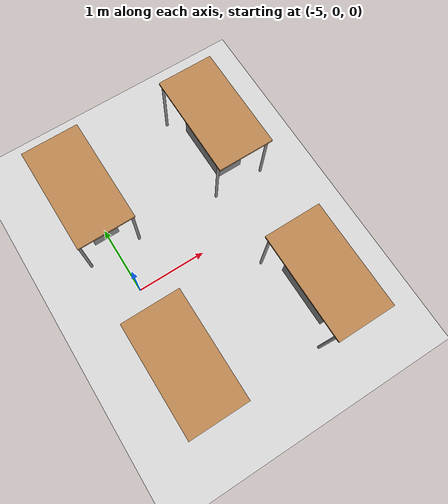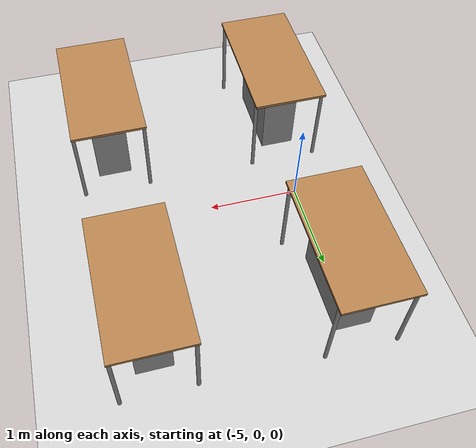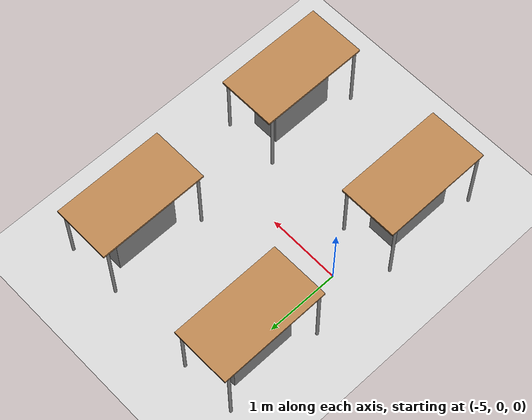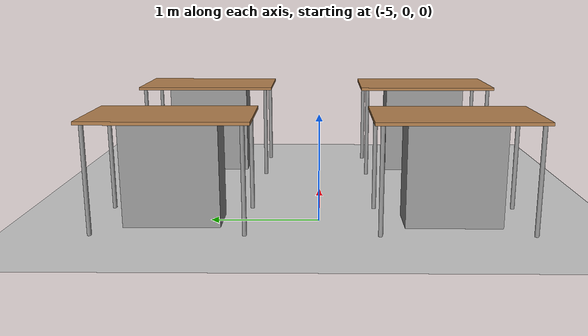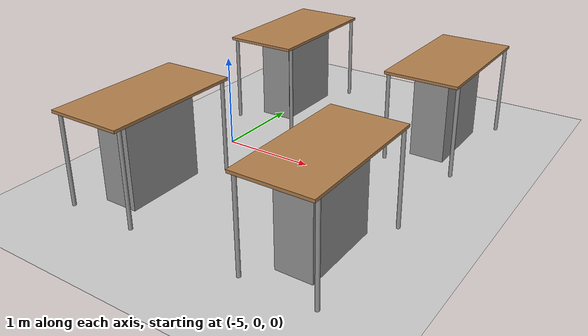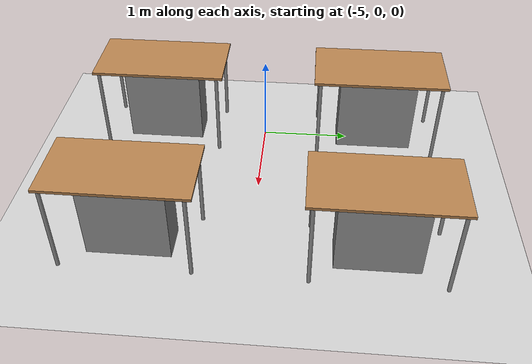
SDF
<sdf version="1.6">
 <world name="default">
  <model name="ground_plane">
   <static>1</static>
   <link name="link">
    <collision name="collision">
     <geometry><plane><normal>0 0 1</normal><size>100 100</size></plane></geometry>
     <surface><friction><ode><mu>100</mu><mu2>50</mu2></ode></friction></surface>
    </collision>
    <visual name="visual">
     <cast_shadows>0</cast_shadows>
     <geometry><plane><normal>0 0 1</normal><size>100 100</size></plane></geometry>
     <material>
      <script><uri>file://media/materials/scripts/gazebo.material</uri><name>Gazebo/Grey</name></script>
     </material>
    </visual>
   </link>
  </model>
  <model name="table-solid">
   <link name="link">
    <visual name="visual1">
     <pose>0 0 1 0 -0 0</pose>
     <geometry><box><size>1.5 0.8 0.03</size></box></geometry>
     <material>
      <script><uri>file://media/materials/scripts/gazebo.material</uri><name>Gazebo/Wood</name></script>
      <shader type="pixel"/>
      <ambient>1 1 1 1</ambient>
      <diffuse>1 1 1 1</diffuse>
      <specular>0.2 0.2 0.2 1</specular>
      <emissive>0 0 0 1</emissive>
     </material>
    </visual>
    <visual name="front_left_leg">
     <pose>0.68 0.38 0.5 0 -0 0</pose>
     <geometry><cylinder><radius>0.02</radius><length>1</length></cylinder></geometry>
     <material>
      <script><uri>file://media/materials/scripts/gazebo.material</uri><name>Gazebo/Grey</name></script>
      <shader type="pixel"/>
      <ambient>0.3 0.3 0.3 1</ambient>
      <diffuse>0.7 0.7 0.7 1</diffuse>
      <specular>0.01 0.01 0.01 1</specular>
      <emissive>0 0 0 1</emissive>
     </material>
    </visual>
    <visual name="front_right_leg">
     <pose>0.68 -0.38 0.5 0 -0 0</pose>
     <geometry><cylinder><radius>0.02</radius><length>1</length></cylinder></geometry>
     <material>
      <script><uri>file://media/materials/scripts/gazebo.material</uri><name>Gazebo/Grey</name></script>
      <shader type="pixel"/>
      <ambient>0.3 0.3 0.3 1</ambient>
      <diffuse>0.7 0.7 0.7 1</diffuse>
      <specular>0.01 0.01 0.01 1</specular>
      <emissive>0 0 0 1</emissive>
     </material>
    </visual>
    <visual name="back_right_leg">
     <pose>-0.68 -0.38 0.5 0 -0 0</pose>
     <geometry><cylinder><radius>0.02</radius><length>1</length></cylinder></geometry>
     <material>
      <script><uri>file://media/materials/scripts/gazebo.material</uri><name>Gazebo/Grey</name></script>
      <shader type="pixel"/>
      <ambient>0.3 0.3 0.3 1</ambient>
      <diffuse>0.7 0.7 0.7 1</diffuse>
      <specular>0.01 0.01 0.01 1</specular>
      <emissive>0 0 0 1</emissive>
     </material>
    </visual>
    <visual name="back_left_leg">
     <pose>-0.68 0.38 0.5 0 -0 0</pose>
     <geometry><cylinder><radius>0.02</radius><length>1</length></cylinder></geometry>
     <material>
      <script><uri>file://media/materials/scripts/gazebo.material</uri><name>Gazebo/Grey</name></script>
      <shader type="pixel"/>
      <ambient>0.3 0.3 0.3 1</ambient>
      <diffuse>0.7 0.7 0.7 1</diffuse>
      <specular>0.01 0.01 0.01 1</specular>
      <emissive>0 0 0 1</emissive>
     </material>
    </visual>
    <collision name="surface">
     <pose>0 0 1 0 -0 0</pose>
     <geometry><box><size>1.5 0.8 0.03</size></box></geometry>
     <surface>
      <friction>
       <ode><mu>0.6</mu><mu2>0.6</mu2><fdir1>0 0 0</fdir1><slip1>0</slip1><slip2>0</slip2></ode>
       <torsional>
        <coefficient>1</coefficient>
        <patch_radius>0</patch_radius>
        <surface_radius>0</surface_radius>
        <use_patch_radius>1</use_patch_radius>
        <ode><slip>0</slip></ode>
       </torsional>
      </friction>
      <bounce><restitution_coefficient>0</restitution_coefficient><threshold>1e+06</threshold></bounce>
      <contact>
       <collide_without_contact>0</collide_without_contact>
       <collide_without_contact_bitmask>1</collide_without_contact_bitmask>
       <collide_bitmask>1</collide_bitmask>
       <ode>
        <soft_cfm>0</soft_cfm>
        <soft_erp>0.2</soft_erp>
        <kp>1e+13</kp>
        <kd>1</kd>
        <max_vel>0.01</max_vel>
        <min_depth>0</min_depth>
       </ode>
       <bullet>
        <split_impulse>1</split_impulse>
        <split_impulse_penetration_threshold>-0.01</split_impulse_penetration_threshold>
        <soft_cfm>0</soft_cfm>
        <soft_erp>0.2</soft_erp>
        <kp>1e+13</kp>
        <kd>1</kd>
       </bullet>
      </contact>
     </surface>
    </collision>
    <collision name="front_left_leg">
     <pose>0.68 0.38 0.5 0 -0 0</pose>
     <geometry><cylinder><radius>0.02</radius><length>1</length></cylinder></geometry>
     <surface>
      <friction>
       <ode><mu>1</mu><mu2>1</mu2><fdir1>0 0 0</fdir1><slip1>0</slip1><slip2>0</slip2></ode>
       <torsional>
        <coefficient>1</coefficient>
        <patch_radius>0</patch_radius>
        <surface_radius>0</surface_radius>
        <use_patch_radius>1</use_patch_radius>
        <ode><slip>0</slip></ode>
       </torsional>
      </friction>
      <bounce><restitution_coefficient>0</restitution_coefficient><threshold>1e+06</threshold></bounce>
      <contact>
       <collide_without_contact>0</collide_without_contact>
       <collide_without_contact_bitmask>1</collide_without_contact_bitmask>
       <collide_bitmask>1</collide_bitmask>
       <ode>
        <soft_cfm>0</soft_cfm>
        <soft_erp>0.2</soft_erp>
        <kp>1e+13</kp>
        <kd>1</kd>
        <max_vel>0.01</max_vel>
        <min_depth>0</min_depth>
       </ode>
       <bullet>
        <split_impulse>1</split_impulse>
        <split_impulse_penetration_threshold>-0.01</split_impulse_penetration_threshold>
        <soft_cfm>0</soft_cfm>
        <soft_erp>0.2</soft_erp>
        <kp>1e+13</kp>
        <kd>1</kd>
       </bullet>
      </contact>
     </surface>
    </collision>
    <collision name="front_right_leg">
     <pose>0.68 -0.38 0.5 0 -0 0</pose>
     <geometry><cylinder><radius>0.02</radius><length>1</length></cylinder></geometry>
     <surface>
      <friction>
       <ode><mu>1</mu><mu2>1</mu2><fdir1>0 0 0</fdir1><slip1>0</slip1><slip2>0</slip2></ode>
       <torsional>
        <coefficient>1</coefficient>
        <patch_radius>0</patch_radius>
        <surface_radius>0</surface_radius>
        <use_patch_radius>1</use_patch_radius>
        <ode><slip>0</slip></ode>
       </torsional>
      </friction>
      <bounce><restitution_coefficient>0</restitution_coefficient><threshold>1e+06</threshold></bounce>
      <contact>
       <collide_without_contact>0</collide_without_contact>
       <collide_without_contact_bitmask>1</collide_without_contact_bitmask>
       <collide_bitmask>1</collide_bitmask>
       <ode>
        <soft_cfm>0</soft_cfm>
        <soft_erp>0.2</soft_erp>
        <kp>1e+13</kp>
        <kd>1</kd>
        <max_vel>0.01</max_vel>
        <min_depth>0</min_depth>
       </ode>
       <bullet>
        <split_impulse>1</split_impulse>
        <split_impulse_penetration_threshold>-0.01</split_impulse_penetration_threshold>
        <soft_cfm>0</soft_cfm>
        <soft_erp>0.2</soft_erp>
        <kp>1e+13</kp>
        <kd>1</kd>
       </bullet>
      </contact>
     </surface>
    </collision>
    <collision name="back_right_leg">
     <pose>-0.68 -0.38 0.5 0 -0 0</pose>
     <geometry><cylinder><radius>0.02</radius><length>1</length></cylinder></geometry>
     <surface>
      <friction>
       <ode><mu>1</mu><mu2>1</mu2><fdir1>0 0 0</fdir1><slip1>0</slip1><slip2>0</slip2></ode>
       <torsional>
        <coefficient>1</coefficient>
        <patch_radius>0</patch_radius>
        <surface_radius>0</surface_radius>
        <use_patch_radius>1</use_patch_radius>
        <ode><slip>0</slip></ode>
       </torsional>
      </friction>
      <bounce><restitution_coefficient>0</restitution_coefficient><threshold>1e+06</threshold></bounce>
      <contact>
       <collide_without_contact>0</collide_without_contact>
       <collide_without_contact_bitmask>1</collide_without_contact_bitmask>
       <collide_bitmask>1</collide_bitmask>
       <ode>
        <soft_cfm>0</soft_cfm>
        <soft_erp>0.2</soft_erp>
        <kp>1e+13</kp>
        <kd>1</kd>
        <max_vel>0.01</max_vel>
        <min_depth>0</min_depth>
       </ode>
       <bullet>
        <split_impulse>1</split_impulse>
        <split_impulse_penetration_threshold>-0.01</split_impulse_penetration_threshold>
        <soft_cfm>0</soft_cfm>
        <soft_erp>0.2</soft_erp>
        <kp>1e+13</kp>
        <kd>1</kd>
       </bullet>
      </contact>
     </surface>
    </collision>
    <collision name="back_left_leg">
     <pose>-0.68 0.38 0.5 0 -0 0</pose>
     <geometry><cylinder><radius>0.02</radius><length>1</length></cylinder></geometry>
     <surface>
      <friction>
       <ode><mu>1</mu><mu2>1</mu2><fdir1>0 0 0</fdir1><slip1>0</slip1><slip2>0</slip2></ode>
       <torsional>
        <coefficient>1</coefficient>
        <patch_radius>0</patch_radius>
        <surface_radius>0</surface_radius>
        <use_patch_radius>1</use_patch_radius>
        <ode><slip>0</slip></ode>
       </torsional>
      </friction>
      <bounce><restitution_coefficient>0</restitution_coefficient><threshold>1e+06</threshold></bounce>
      <contact>
       <collide_without_contact>0</collide_without_contact>
       <collide_without_contact_bitmask>1</collide_without_contact_bitmask>
       <collide_bitmask>1</collide_bitmask>
       <ode>
        <soft_cfm>0</soft_cfm>
        <soft_erp>0.2</soft_erp>
        <kp>1e+13</kp>
        <kd>1</kd>
        <max_vel>0.01</max_vel>
        <min_depth>0</min_depth>
       </ode>
       <bullet>
        <split_impulse>1</split_impulse>
        <split_impulse_penetration_threshold>-0.01</split_impulse_penetration_threshold>
        <soft_cfm>0</soft_cfm>
        <soft_erp>0.2</soft_erp>
        <kp>1e+13</kp>
        <kd>1</kd>
       </bullet>
      </contact>
     </surface>
    </collision>
   </link>
   <link name="link_1">
    <pose>0.000711 -0.001597 0.5 0 -0 0</pose>
    <inertial>
     <mass>0.336991</mass>
     <inertia>
      <ixx>0.0321457</ixx>
      <ixy>0</ixy>
      <ixz>0</ixz>
      <iyy>0.0501251</iyy>
      <iyz>0</iyz>
      <izz>0.0261056</izz>
     </inertia>
    </inertial>
    <visual name="visual">
     <geometry><box><size>0.885956 0.380374 1</size></box></geometry>
     <material>
      <lighting>1</lighting>
      <script><uri>file://media/materials/scripts/gazebo.material</uri><name>Gazebo/Grey</name></script>
      <shader type="pixel"><normal_map>__default__</normal_map></shader>
      <ambient>0.3 0.3 0.3 1</ambient>
      <diffuse>0.7 0.7 0.7 1</diffuse>
      <specular>0.01 0.01 0.01 1</specular>
      <emissive>0 0 0 1</emissive>
     </material>
    </visual>
    <collision name="collision">
     <geometry><box><size>0.885956 0.380374 1</size></box></geometry>
     <surface>
      <friction>
       <ode><mu>1</mu><mu2>1</mu2><fdir1>0 0 0</fdir1><slip1>0</slip1><slip2>0</slip2></ode>
       <torsional>
        <coefficient>1</coefficient>
        <patch_radius>0</patch_radius>
        <surface_radius>0</surface_radius>
        <use_patch_radius>1</use_patch_radius>
        <ode><slip>0</slip></ode>
       </torsional>
      </friction>
      <bounce><restitution_coefficient>0</restitution_coefficient><threshold>1e+06</threshold></bounce>
      <contact>
       <collide_without_contact>0</collide_without_contact>
       <collide_without_contact_bitmask>1</collide_without_contact_bitmask>
       <collide_bitmask>1</collide_bitmask>
       <ode>
        <soft_cfm>0</soft_cfm>
        <soft_erp>0.2</soft_erp>
        <kp>1e+13</kp>
        <kd>1</kd>
        <max_vel>0.01</max_vel>
        <min_depth>0</min_depth>
       </ode>
       <bullet>
        <split_impulse>1</split_impulse>
        <split_impulse_penetration_threshold>-0.01</split_impulse_penetration_threshold>
        <soft_cfm>0</soft_cfm>
        <soft_erp>0.2</soft_erp>
        <kp>1e+13</kp>
        <kd>1</kd>
       </bullet>
      </contact>
     </surface>
    </collision>
   </link>
   <static>1</static>
   <pose>-5.02142 -1.2176 0 0 0 -1.5684</pose>
  </model>
  <model name="table-solid_clone">
   <link name="link">
    <visual name="visual1">
     <pose>0 0 1 0 -0 0</pose>
     <geometry><box><size>1.5 0.8 0.03</size></box></geometry>
     <material>
      <script><uri>file://media/materials/scripts/gazebo.material</uri><name>Gazebo/Wood</name></script>
      <shader type="pixel"/>
      <ambient>1 1 1 1</ambient>
      <diffuse>1 1 1 1</diffuse>
      <specular>0.2 0.2 0.2 1</specular>
      <emissive>0 0 0 1</emissive>
     </material>
    </visual>
    <visual name="front_left_leg">
     <pose>0.68 0.38 0.5 0 -0 0</pose>
     <geometry><cylinder><radius>0.02</radius><length>1</length></cylinder></geometry>
     <material>
      <script><uri>file://media/materials/scripts/gazebo.material</uri><name>Gazebo/Grey</name></script>
      <shader type="pixel"/>
      <ambient>0.3 0.3 0.3 1</ambient>
      <diffuse>0.7 0.7 0.7 1</diffuse>
      <specular>0.01 0.01 0.01 1</specular>
      <emissive>0 0 0 1</emissive>
     </material>
    </visual>
    <visual name="front_right_leg">
     <pose>0.68 -0.38 0.5 0 -0 0</pose>
     <geometry><cylinder><radius>0.02</radius><length>1</length></cylinder></geometry>
     <material>
      <script><uri>file://media/materials/scripts/gazebo.material</uri><name>Gazebo/Grey</name></script>
      <shader type="pixel"/>
      <ambient>0.3 0.3 0.3 1</ambient>
      <diffuse>0.7 0.7 0.7 1</diffuse>
      <specular>0.01 0.01 0.01 1</specular>
      <emissive>0 0 0 1</emissive>
     </material>
    </visual>
    <visual name="back_right_leg">
     <pose>-0.68 -0.38 0.5 0 -0 0</pose>
     <geometry><cylinder><radius>0.02</radius><length>1</length></cylinder></geometry>
     <material>
      <script><uri>file://media/materials/scripts/gazebo.material</uri><name>Gazebo/Grey</name></script>
      <shader type="pixel"/>
      <ambient>0.3 0.3 0.3 1</ambient>
      <diffuse>0.7 0.7 0.7 1</diffuse>
      <specular>0.01 0.01 0.01 1</specular>
      <emissive>0 0 0 1</emissive>
     </material>
    </visual>
    <visual name="back_left_leg">
     <pose>-0.68 0.38 0.5 0 -0 0</pose>
     <geometry><cylinder><radius>0.02</radius><length>1</length></cylinder></geometry>
     <material>
      <script><uri>file://media/materials/scripts/gazebo.material</uri><name>Gazebo/Grey</name></script>
      <shader type="pixel"/>
      <ambient>0.3 0.3 0.3 1</ambient>
      <diffuse>0.7 0.7 0.7 1</diffuse>
      <specular>0.01 0.01 0.01 1</specular>
      <emissive>0 0 0 1</emissive>
     </material>
    </visual>
    <collision name="surface">
     <pose>0 0 1 0 -0 0</pose>
     <geometry><box><size>1.5 0.8 0.03</size></box></geometry>
     <surface>
      <friction>
       <ode><mu>0.6</mu><mu2>0.6</mu2><fdir1>0 0 0</fdir1><slip1>0</slip1><slip2>0</slip2></ode>
       <torsional>
        <coefficient>1</coefficient>
        <patch_radius>0</patch_radius>
        <surface_radius>0</surface_radius>
        <use_patch_radius>1</use_patch_radius>
        <ode><slip>0</slip></ode>
       </torsional>
      </friction>
      <bounce><restitution_coefficient>0</restitution_coefficient><threshold>1e+06</threshold></bounce>
      <contact>
       <collide_without_contact>0</collide_without_contact>
       <collide_without_contact_bitmask>1</collide_without_contact_bitmask>
       <collide_bitmask>1</collide_bitmask>
       <ode>
        <soft_cfm>0</soft_cfm>
        <soft_erp>0.2</soft_erp>
        <kp>1e+13</kp>
        <kd>1</kd>
        <max_vel>0.01</max_vel>
        <min_depth>0</min_depth>
       </ode>
       <bullet>
        <split_impulse>1</split_impulse>
        <split_impulse_penetration_threshold>-0.01</split_impulse_penetration_threshold>
        <soft_cfm>0</soft_cfm>
        <soft_erp>0.2</soft_erp>
        <kp>1e+13</kp>
        <kd>1</kd>
       </bullet>
      </contact>
     </surface>
    </collision>
    <collision name="front_left_leg">
     <pose>0.68 0.38 0.5 0 -0 0</pose>
     <geometry><cylinder><radius>0.02</radius><length>1</length></cylinder></geometry>
     <surface>
      <friction>
       <ode><mu>1</mu><mu2>1</mu2><fdir1>0 0 0</fdir1><slip1>0</slip1><slip2>0</slip2></ode>
       <torsional>
        <coefficient>1</coefficient>
        <patch_radius>0</patch_radius>
        <surface_radius>0</surface_radius>
        <use_patch_radius>1</use_patch_radius>
        <ode><slip>0</slip></ode>
       </torsional>
      </friction>
      <bounce><restitution_coefficient>0</restitution_coefficient><threshold>1e+06</threshold></bounce>
      <contact>
       <collide_without_contact>0</collide_without_contact>
       <collide_without_contact_bitmask>1</collide_without_contact_bitmask>
       <collide_bitmask>1</collide_bitmask>
       <ode>
        <soft_cfm>0</soft_cfm>
        <soft_erp>0.2</soft_erp>
        <kp>1e+13</kp>
        <kd>1</kd>
        <max_vel>0.01</max_vel>
        <min_depth>0</min_depth>
       </ode>
       <bullet>
        <split_impulse>1</split_impulse>
        <split_impulse_penetration_threshold>-0.01</split_impulse_penetration_threshold>
        <soft_cfm>0</soft_cfm>
        <soft_erp>0.2</soft_erp>
        <kp>1e+13</kp>
        <kd>1</kd>
       </bullet>
      </contact>
     </surface>
    </collision>
    <collision name="front_right_leg">
     <pose>0.68 -0.38 0.5 0 -0 0</pose>
     <geometry><cylinder><radius>0.02</radius><length>1</length></cylinder></geometry>
     <surface>
      <friction>
       <ode><mu>1</mu><mu2>1</mu2><fdir1>0 0 0</fdir1><slip1>0</slip1><slip2>0</slip2></ode>
       <torsional>
        <coefficient>1</coefficient>
        <patch_radius>0</patch_radius>
        <surface_radius>0</surface_radius>
        <use_patch_radius>1</use_patch_radius>
        <ode><slip>0</slip></ode>
       </torsional>
      </friction>
      <bounce><restitution_coefficient>0</restitution_coefficient><threshold>1e+06</threshold></bounce>
      <contact>
       <collide_without_contact>0</collide_without_contact>
       <collide_without_contact_bitmask>1</collide_without_contact_bitmask>
       <collide_bitmask>1</collide_bitmask>
       <ode>
        <soft_cfm>0</soft_cfm>
        <soft_erp>0.2</soft_erp>
        <kp>1e+13</kp>
        <kd>1</kd>
        <max_vel>0.01</max_vel>
        <min_depth>0</min_depth>
       </ode>
       <bullet>
        <split_impulse>1</split_impulse>
        <split_impulse_penetration_threshold>-0.01</split_impulse_penetration_threshold>
        <soft_cfm>0</soft_cfm>
        <soft_erp>0.2</soft_erp>
        <kp>1e+13</kp>
        <kd>1</kd>
       </bullet>
      </contact>
     </surface>
    </collision>
    <collision name="back_right_leg">
     <pose>-0.68 -0.38 0.5 0 -0 0</pose>
     <geometry><cylinder><radius>0.02</radius><length>1</length></cylinder></geometry>
     <surface>
      <friction>
       <ode><mu>1</mu><mu2>1</mu2><fdir1>0 0 0</fdir1><slip1>0</slip1><slip2>0</slip2></ode>
       <torsional>
        <coefficient>1</coefficient>
        <patch_radius>0</patch_radius>
        <surface_radius>0</surface_radius>
        <use_patch_radius>1</use_patch_radius>
        <ode><slip>0</slip></ode>
       </torsional>
      </friction>
      <bounce><restitution_coefficient>0</restitution_coefficient><threshold>1e+06</threshold></bounce>
      <contact>
       <collide_without_contact>0</collide_without_contact>
       <collide_without_contact_bitmask>1</collide_without_contact_bitmask>
       <collide_bitmask>1</collide_bitmask>
       <ode>
        <soft_cfm>0</soft_cfm>
        <soft_erp>0.2</soft_erp>
        <kp>1e+13</kp>
        <kd>1</kd>
        <max_vel>0.01</max_vel>
        <min_depth>0</min_depth>
       </ode>
       <bullet>
        <split_impulse>1</split_impulse>
        <split_impulse_penetration_threshold>-0.01</split_impulse_penetration_threshold>
        <soft_cfm>0</soft_cfm>
        <soft_erp>0.2</soft_erp>
        <kp>1e+13</kp>
        <kd>1</kd>
       </bullet>
      </contact>
     </surface>
    </collision>
    <collision name="back_left_leg">
     <pose>-0.68 0.38 0.5 0 -0 0</pose>
     <geometry><cylinder><radius>0.02</radius><length>1</length></cylinder></geometry>
     <surface>
      <friction>
       <ode><mu>1</mu><mu2>1</mu2><fdir1>0 0 0</fdir1><slip1>0</slip1><slip2>0</slip2></ode>
       <torsional>
        <coefficient>1</coefficient>
        <patch_radius>0</patch_radius>
        <surface_radius>0</surface_radius>
        <use_patch_radius>1</use_patch_radius>
        <ode><slip>0</slip></ode>
       </torsional>
      </friction>
      <bounce><restitution_coefficient>0</restitution_coefficient><threshold>1e+06</threshold></bounce>
      <contact>
       <collide_without_contact>0</collide_without_contact>
       <collide_without_contact_bitmask>1</collide_without_contact_bitmask>
       <collide_bitmask>1</collide_bitmask>
       <ode>
        <soft_cfm>0</soft_cfm>
        <soft_erp>0.2</soft_erp>
        <kp>1e+13</kp>
        <kd>1</kd>
        <max_vel>0.01</max_vel>
        <min_depth>0</min_depth>
       </ode>
       <bullet>
        <split_impulse>1</split_impulse>
        <split_impulse_penetration_threshold>-0.01</split_impulse_penetration_threshold>
        <soft_cfm>0</soft_cfm>
        <soft_erp>0.2</soft_erp>
        <kp>1e+13</kp>
        <kd>1</kd>
       </bullet>
      </contact>
     </surface>
    </collision>
   </link>
   <link name="link_1">
    <pose>0.000711 -0.001597 0.5 0 -0 0</pose>
    <inertial>
     <mass>0.336991</mass>
     <inertia>
      <ixx>0.0321457</ixx>
      <ixy>0</ixy>
      <ixz>0</ixz>
      <iyy>0.0501251</iyy>
      <iyz>0</iyz>
      <izz>0.0261056</izz>
     </inertia>
    </inertial>
    <visual name="visual">
     <geometry><box><size>0.885956 0.380374 1</size></box></geometry>
     <material>
      <lighting>1</lighting>
      <script><uri>file://media/materials/scripts/gazebo.material</uri><name>Gazebo/Grey</name></script>
      <shader type="pixel"><normal_map>__default__</normal_map></shader>
      <ambient>0.3 0.3 0.3 1</ambient>
      <diffuse>0.7 0.7 0.7 1</diffuse>
      <specular>0.01 0.01 0.01 1</specular>
      <emissive>0 0 0 1</emissive>
     </material>
    </visual>
    <collision name="collision">
     <geometry><box><size>0.885956 0.380374 1</size></box></geometry>
     <surface>
      <friction>
       <ode><mu>1</mu><mu2>1</mu2><fdir1>0 0 0</fdir1><slip1>0</slip1><slip2>0</slip2></ode>
       <torsional>
        <coefficient>1</coefficient>
        <patch_radius>0</patch_radius>
        <surface_radius>0</surface_radius>
        <use_patch_radius>1</use_patch_radius>
        <ode><slip>0</slip></ode>
       </torsional>
      </friction>
      <bounce><restitution_coefficient>0</restitution_coefficient><threshold>1e+06</threshold></bounce>
      <contact>
       <collide_without_contact>0</collide_without_contact>
       <collide_without_contact_bitmask>1</collide_without_contact_bitmask>
       <collide_bitmask>1</collide_bitmask>
       <ode>
        <soft_cfm>0</soft_cfm>
        <soft_erp>0.2</soft_erp>
        <kp>1e+13</kp>
        <kd>1</kd>
        <max_vel>0.01</max_vel>
        <min_depth>0</min_depth>
       </ode>
       <bullet>
        <split_impulse>1</split_impulse>
        <split_impulse_penetration_threshold>-0.01</split_impulse_penetration_threshold>
        <soft_cfm>0</soft_cfm>
        <soft_erp>0.2</soft_erp>
        <kp>1e+13</kp>
        <kd>1</kd>
       </bullet>
      </contact>
     </surface>
    </collision>
   </link>
   <static>1</static>
   <pose>-5.02018 1.33205 0 0 0 -1.56511</pose>
  </model>
  <model name="table-solid_clone_0">
   <link name="link">
    <visual name="visual1">
     <pose>0 0 1 0 -0 0</pose>
     <geometry><box><size>1.5 0.8 0.03</size></box></geometry>
     <material>
      <script><uri>file://media/materials/scripts/gazebo.material</uri><name>Gazebo/Wood</name></script>
      <shader type="pixel"/>
      <ambient>1 1 1 1</ambient>
      <diffuse>1 1 1 1</diffuse>
      <specular>0.2 0.2 0.2 1</specular>
      <emissive>0 0 0 1</emissive>
     </material>
    </visual>
    <visual name="front_left_leg">
     <pose>0.68 0.38 0.5 0 -0 0</pose>
     <geometry><cylinder><radius>0.02</radius><length>1</length></cylinder></geometry>
     <material>
      <script><uri>file://media/materials/scripts/gazebo.material</uri><name>Gazebo/Grey</name></script>
      <shader type="pixel"/>
      <ambient>0.3 0.3 0.3 1</ambient>
      <diffuse>0.7 0.7 0.7 1</diffuse>
      <specular>0.01 0.01 0.01 1</specular>
      <emissive>0 0 0 1</emissive>
     </material>
    </visual>
    <visual name="front_right_leg">
     <pose>0.68 -0.38 0.5 0 -0 0</pose>
     <geometry><cylinder><radius>0.02</radius><length>1</length></cylinder></geometry>
     <material>
      <script><uri>file://media/materials/scripts/gazebo.material</uri><name>Gazebo/Grey</name></script>
      <shader type="pixel"/>
      <ambient>0.3 0.3 0.3 1</ambient>
      <diffuse>0.7 0.7 0.7 1</diffuse>
      <specular>0.01 0.01 0.01 1</specular>
      <emissive>0 0 0 1</emissive>
     </material>
    </visual>
    <visual name="back_right_leg">
     <pose>-0.68 -0.38 0.5 0 -0 0</pose>
     <geometry><cylinder><radius>0.02</radius><length>1</length></cylinder></geometry>
     <material>
      <script><uri>file://media/materials/scripts/gazebo.material</uri><name>Gazebo/Grey</name></script>
      <shader type="pixel"/>
      <ambient>0.3 0.3 0.3 1</ambient>
      <diffuse>0.7 0.7 0.7 1</diffuse>
      <specular>0.01 0.01 0.01 1</specular>
      <emissive>0 0 0 1</emissive>
     </material>
    </visual>
    <visual name="back_left_leg">
     <pose>-0.68 0.38 0.5 0 -0 0</pose>
     <geometry><cylinder><radius>0.02</radius><length>1</length></cylinder></geometry>
     <material>
      <script><uri>file://media/materials/scripts/gazebo.material</uri><name>Gazebo/Grey</name></script>
      <shader type="pixel"/>
      <ambient>0.3 0.3 0.3 1</ambient>
      <diffuse>0.7 0.7 0.7 1</diffuse>
      <specular>0.01 0.01 0.01 1</specular>
      <emissive>0 0 0 1</emissive>
     </material>
    </visual>
    <collision name="surface">
     <pose>0 0 1 0 -0 0</pose>
     <geometry><box><size>1.5 0.8 0.03</size></box></geometry>
     <surface>
      <friction>
       <ode><mu>0.6</mu><mu2>0.6</mu2><fdir1>0 0 0</fdir1><slip1>0</slip1><slip2>0</slip2></ode>
       <torsional>
        <coefficient>1</coefficient>
        <patch_radius>0</patch_radius>
        <surface_radius>0</surface_radius>
        <use_patch_radius>1</use_patch_radius>
        <ode><slip>0</slip></ode>
       </torsional>
      </friction>
      <bounce><restitution_coefficient>0</restitution_coefficient><threshold>1e+06</threshold></bounce>
      <contact>
       <collide_without_contact>0</collide_without_contact>
       <collide_without_contact_bitmask>1</collide_without_contact_bitmask>
       <collide_bitmask>1</collide_bitmask>
       <ode>
        <soft_cfm>0</soft_cfm>
        <soft_erp>0.2</soft_erp>
        <kp>1e+13</kp>
        <kd>1</kd>
        <max_vel>0.01</max_vel>
        <min_depth>0</min_depth>
       </ode>
       <bullet>
        <split_impulse>1</split_impulse>
        <split_impulse_penetration_threshold>-0.01</split_impulse_penetration_threshold>
        <soft_cfm>0</soft_cfm>
        <soft_erp>0.2</soft_erp>
        <kp>1e+13</kp>
        <kd>1</kd>
       </bullet>
      </contact>
     </surface>
    </collision>
    <collision name="front_left_leg">
     <pose>0.68 0.38 0.5 0 -0 0</pose>
     <geometry><cylinder><radius>0.02</radius><length>1</length></cylinder></geometry>
     <surface>
      <friction>
       <ode><mu>1</mu><mu2>1</mu2><fdir1>0 0 0</fdir1><slip1>0</slip1><slip2>0</slip2></ode>
       <torsional>
        <coefficient>1</coefficient>
        <patch_radius>0</patch_radius>
        <surface_radius>0</surface_radius>
        <use_patch_radius>1</use_patch_radius>
        <ode><slip>0</slip></ode>
       </torsional>
      </friction>
      <bounce><restitution_coefficient>0</restitution_coefficient><threshold>1e+06</threshold></bounce>
      <contact>
       <collide_without_contact>0</collide_without_contact>
       <collide_without_contact_bitmask>1</collide_without_contact_bitmask>
       <collide_bitmask>1</collide_bitmask>
       <ode>
        <soft_cfm>0</soft_cfm>
        <soft_erp>0.2</soft_erp>
        <kp>1e+13</kp>
        <kd>1</kd>
        <max_vel>0.01</max_vel>
        <min_depth>0</min_depth>
       </ode>
       <bullet>
        <split_impulse>1</split_impulse>
        <split_impulse_penetration_threshold>-0.01</split_impulse_penetration_threshold>
        <soft_cfm>0</soft_cfm>
        <soft_erp>0.2</soft_erp>
        <kp>1e+13</kp>
        <kd>1</kd>
       </bullet>
      </contact>
     </surface>
    </collision>
    <collision name="front_right_leg">
     <pose>0.68 -0.38 0.5 0 -0 0</pose>
     <geometry><cylinder><radius>0.02</radius><length>1</length></cylinder></geometry>
     <surface>
      <friction>
       <ode><mu>1</mu><mu2>1</mu2><fdir1>0 0 0</fdir1><slip1>0</slip1><slip2>0</slip2></ode>
       <torsional>
        <coefficient>1</coefficient>
        <patch_radius>0</patch_radius>
        <surface_radius>0</surface_radius>
        <use_patch_radius>1</use_patch_radius>
        <ode><slip>0</slip></ode>
       </torsional>
      </friction>
      <bounce><restitution_coefficient>0</restitution_coefficient><threshold>1e+06</threshold></bounce>
      <contact>
       <collide_without_contact>0</collide_without_contact>
       <collide_without_contact_bitmask>1</collide_without_contact_bitmask>
       <collide_bitmask>1</collide_bitmask>
       <ode>
        <soft_cfm>0</soft_cfm>
        <soft_erp>0.2</soft_erp>
        <kp>1e+13</kp>
        <kd>1</kd>
        <max_vel>0.01</max_vel>
        <min_depth>0</min_depth>
       </ode>
       <bullet>
        <split_impulse>1</split_impulse>
        <split_impulse_penetration_threshold>-0.01</split_impulse_penetration_threshold>
        <soft_cfm>0</soft_cfm>
        <soft_erp>0.2</soft_erp>
        <kp>1e+13</kp>
        <kd>1</kd>
       </bullet>
      </contact>
     </surface>
    </collision>
    <collision name="back_right_leg">
     <pose>-0.68 -0.38 0.5 0 -0 0</pose>
     <geometry><cylinder><radius>0.02</radius><length>1</length></cylinder></geometry>
     <surface>
      <friction>
       <ode><mu>1</mu><mu2>1</mu2><fdir1>0 0 0</fdir1><slip1>0</slip1><slip2>0</slip2></ode>
       <torsional>
        <coefficient>1</coefficient>
        <patch_radius>0</patch_radius>
        <surface_radius>0</surface_radius>
        <use_patch_radius>1</use_patch_radius>
        <ode><slip>0</slip></ode>
       </torsional>
      </friction>
      <bounce><restitution_coefficient>0</restitution_coefficient><threshold>1e+06</threshold></bounce>
      <contact>
       <collide_without_contact>0</collide_without_contact>
       <collide_without_contact_bitmask>1</collide_without_contact_bitmask>
       <collide_bitmask>1</collide_bitmask>
       <ode>
        <soft_cfm>0</soft_cfm>
        <soft_erp>0.2</soft_erp>
        <kp>1e+13</kp>
        <kd>1</kd>
        <max_vel>0.01</max_vel>
        <min_depth>0</min_depth>
       </ode>
       <bullet>
        <split_impulse>1</split_impulse>
        <split_impulse_penetration_threshold>-0.01</split_impulse_penetration_threshold>
        <soft_cfm>0</soft_cfm>
        <soft_erp>0.2</soft_erp>
        <kp>1e+13</kp>
        <kd>1</kd>
       </bullet>
      </contact>
     </surface>
    </collision>
    <collision name="back_left_leg">
     <pose>-0.68 0.38 0.5 0 -0 0</pose>
     <geometry><cylinder><radius>0.02</radius><length>1</length></cylinder></geometry>
     <surface>
      <friction>
       <ode><mu>1</mu><mu2>1</mu2><fdir1>0 0 0</fdir1><slip1>0</slip1><slip2>0</slip2></ode>
       <torsional>
        <coefficient>1</coefficient>
        <patch_radius>0</patch_radius>
        <surface_radius>0</surface_radius>
        <use_patch_radius>1</use_patch_radius>
        <ode><slip>0</slip></ode>
       </torsional>
      </friction>
      <bounce><restitution_coefficient>0</restitution_coefficient><threshold>1e+06</threshold></bounce>
      <contact>
       <collide_without_contact>0</collide_without_contact>
       <collide_without_contact_bitmask>1</collide_without_contact_bitmask>
       <collide_bitmask>1</collide_bitmask>
       <ode>
        <soft_cfm>0</soft_cfm>
        <soft_erp>0.2</soft_erp>
        <kp>1e+13</kp>
        <kd>1</kd>
        <max_vel>0.01</max_vel>
        <min_depth>0</min_depth>
       </ode>
       <bullet>
        <split_impulse>1</split_impulse>
        <split_impulse_penetration_threshold>-0.01</split_impulse_penetration_threshold>
        <soft_cfm>0</soft_cfm>
        <soft_erp>0.2</soft_erp>
        <kp>1e+13</kp>
        <kd>1</kd>
       </bullet>
      </contact>
     </surface>
    </collision>
   </link>
   <link name="link_1">
    <pose>0.000711 -0.001597 0.5 0 -0 0</pose>
    <inertial>
     <mass>0.336991</mass>
     <inertia>
      <ixx>0.0321457</ixx>
      <ixy>0</ixy>
      <ixz>0</ixz>
      <iyy>0.0501251</iyy>
      <iyz>0</iyz>
      <izz>0.0261056</izz>
     </inertia>
    </inertial>
    <visual name="visual">
     <geometry><box><size>0.885956 0.380374 1</size></box></geometry>
     <material>
      <lighting>1</lighting>
      <script><uri>file://media/materials/scripts/gazebo.material</uri><name>Gazebo/Grey</name></script>
      <shader type="pixel"><normal_map>__default__</normal_map></shader>
      <ambient>0.3 0.3 0.3 1</ambient>
      <diffuse>0.7 0.7 0.7 1</diffuse>
      <specular>0.01 0.01 0.01 1</specular>
      <emissive>0 0 0 1</emissive>
     </material>
    </visual>
    <collision name="collision">
     <geometry><box><size>0.885956 0.380374 1</size></box></geometry>
     <surface>
      <friction>
       <ode><mu>1</mu><mu2>1</mu2><fdir1>0 0 0</fdir1><slip1>0</slip1><slip2>0</slip2></ode>
       <torsional>
        <coefficient>1</coefficient>
        <patch_radius>0</patch_radius>
        <surface_radius>0</surface_radius>
        <use_patch_radius>1</use_patch_radius>
        <ode><slip>0</slip></ode>
       </torsional>
      </friction>
      <bounce><restitution_coefficient>0</restitution_coefficient><threshold>1e+06</threshold></bounce>
      <contact>
       <collide_without_contact>0</collide_without_contact>
       <collide_without_contact_bitmask>1</collide_without_contact_bitmask>
       <collide_bitmask>1</collide_bitmask>
       <ode>
        <soft_cfm>0</soft_cfm>
        <soft_erp>0.2</soft_erp>
        <kp>1e+13</kp>
        <kd>1</kd>
        <max_vel>0.01</max_vel>
        <min_depth>0</min_depth>
       </ode>
       <bullet>
        <split_impulse>1</split_impulse>
        <split_impulse_penetration_threshold>-0.01</split_impulse_penetration_threshold>
        <soft_cfm>0</soft_cfm>
        <soft_erp>0.2</soft_erp>
        <kp>1e+13</kp>
        <kd>1</kd>
       </bullet>
      </contact>
     </surface>
    </collision>
   </link>
   <static>1</static>
   <pose>-3.0065 1.30151 0 0 0 -1.5684</pose>
  </model>
  <model name="table-solid_clone_1">
   <link name="link">
    <visual name="visual1">
     <pose>0 0 1 0 -0 0</pose>
     <geometry><box><size>1.5 0.8 0.03</size></box></geometry>
     <material>
      <script><uri>file://media/materials/scripts/gazebo.material</uri><name>Gazebo/Wood</name></script>
      <shader type="pixel"/>
      <ambient>1 1 1 1</ambient>
      <diffuse>1 1 1 1</diffuse>
      <specular>0.2 0.2 0.2 1</specular>
      <emissive>0 0 0 1</emissive>
     </material>
    </visual>
    <visual name="front_left_leg">
     <pose>0.68 0.38 0.5 0 -0 0</pose>
     <geometry><cylinder><radius>0.02</radius><length>1</length></cylinder></geometry>
     <material>
      <script><uri>file://media/materials/scripts/gazebo.material</uri><name>Gazebo/Grey</name></script>
      <shader type="pixel"/>
      <ambient>0.3 0.3 0.3 1</ambient>
      <diffuse>0.7 0.7 0.7 1</diffuse>
      <specular>0.01 0.01 0.01 1</specular>
      <emissive>0 0 0 1</emissive>
     </material>
    </visual>
    <visual name="front_right_leg">
     <pose>0.68 -0.38 0.5 0 -0 0</pose>
     <geometry><cylinder><radius>0.02</radius><length>1</length></cylinder></geometry>
     <material>
      <script><uri>file://media/materials/scripts/gazebo.material</uri><name>Gazebo/Grey</name></script>
      <shader type="pixel"/>
      <ambient>0.3 0.3 0.3 1</ambient>
      <diffuse>0.7 0.7 0.7 1</diffuse>
      <specular>0.01 0.01 0.01 1</specular>
      <emissive>0 0 0 1</emissive>
     </material>
    </visual>
    <visual name="back_right_leg">
     <pose>-0.68 -0.38 0.5 0 -0 0</pose>
     <geometry><cylinder><radius>0.02</radius><length>1</length></cylinder></geometry>
     <material>
      <script><uri>file://media/materials/scripts/gazebo.material</uri><name>Gazebo/Grey</name></script>
      <shader type="pixel"/>
      <ambient>0.3 0.3 0.3 1</ambient>
      <diffuse>0.7 0.7 0.7 1</diffuse>
      <specular>0.01 0.01 0.01 1</specular>
      <emissive>0 0 0 1</emissive>
     </material>
    </visual>
    <visual name="back_left_leg">
     <pose>-0.68 0.38 0.5 0 -0 0</pose>
     <geometry><cylinder><radius>0.02</radius><length>1</length></cylinder></geometry>
     <material>
      <script><uri>file://media/materials/scripts/gazebo.material</uri><name>Gazebo/Grey</name></script>
      <shader type="pixel"/>
      <ambient>0.3 0.3 0.3 1</ambient>
      <diffuse>0.7 0.7 0.7 1</diffuse>
      <specular>0.01 0.01 0.01 1</specular>
      <emissive>0 0 0 1</emissive>
     </material>
    </visual>
    <collision name="surface">
     <pose>0 0 1 0 -0 0</pose>
     <geometry><box><size>1.5 0.8 0.03</size></box></geometry>
     <surface>
      <friction>
       <ode><mu>0.6</mu><mu2>0.6</mu2><fdir1>0 0 0</fdir1><slip1>0</slip1><slip2>0</slip2></ode>
       <torsional>
        <coefficient>1</coefficient>
        <patch_radius>0</patch_radius>
        <surface_radius>0</surface_radius>
        <use_patch_radius>1</use_patch_radius>
        <ode><slip>0</slip></ode>
       </torsional>
      </friction>
      <bounce><restitution_coefficient>0</restitution_coefficient><threshold>1e+06</threshold></bounce>
      <contact>
       <collide_without_contact>0</collide_without_contact>
       <collide_without_contact_bitmask>1</collide_without_contact_bitmask>
       <collide_bitmask>1</collide_bitmask>
       <ode>
        <soft_cfm>0</soft_cfm>
        <soft_erp>0.2</soft_erp>
        <kp>1e+13</kp>
        <kd>1</kd>
        <max_vel>0.01</max_vel>
        <min_depth>0</min_depth>
       </ode>
       <bullet>
        <split_impulse>1</split_impulse>
        <split_impulse_penetration_threshold>-0.01</split_impulse_penetration_threshold>
        <soft_cfm>0</soft_cfm>
        <soft_erp>0.2</soft_erp>
        <kp>1e+13</kp>
        <kd>1</kd>
       </bullet>
      </contact>
     </surface>
    </collision>
    <collision name="front_left_leg">
     <pose>0.68 0.38 0.5 0 -0 0</pose>
     <geometry><cylinder><radius>0.02</radius><length>1</length></cylinder></geometry>
     <surface>
      <friction>
       <ode><mu>1</mu><mu2>1</mu2><fdir1>0 0 0</fdir1><slip1>0</slip1><slip2>0</slip2></ode>
       <torsional>
        <coefficient>1</coefficient>
        <patch_radius>0</patch_radius>
        <surface_radius>0</surface_radius>
        <use_patch_radius>1</use_patch_radius>
        <ode><slip>0</slip></ode>
       </torsional>
      </friction>
      <bounce><restitution_coefficient>0</restitution_coefficient><threshold>1e+06</threshold></bounce>
      <contact>
       <collide_without_contact>0</collide_without_contact>
       <collide_without_contact_bitmask>1</collide_without_contact_bitmask>
       <collide_bitmask>1</collide_bitmask>
       <ode>
        <soft_cfm>0</soft_cfm>
        <soft_erp>0.2</soft_erp>
        <kp>1e+13</kp>
        <kd>1</kd>
        <max_vel>0.01</max_vel>
        <min_depth>0</min_depth>
       </ode>
       <bullet>
        <split_impulse>1</split_impulse>
        <split_impulse_penetration_threshold>-0.01</split_impulse_penetration_threshold>
        <soft_cfm>0</soft_cfm>
        <soft_erp>0.2</soft_erp>
        <kp>1e+13</kp>
        <kd>1</kd>
       </bullet>
      </contact>
     </surface>
    </collision>
    <collision name="front_right_leg">
     <pose>0.68 -0.38 0.5 0 -0 0</pose>
     <geometry><cylinder><radius>0.02</radius><length>1</length></cylinder></geometry>
     <surface>
      <friction>
       <ode><mu>1</mu><mu2>1</mu2><fdir1>0 0 0</fdir1><slip1>0</slip1><slip2>0</slip2></ode>
       <torsional>
        <coefficient>1</coefficient>
        <patch_radius>0</patch_radius>
        <surface_radius>0</surface_radius>
        <use_patch_radius>1</use_patch_radius>
        <ode><slip>0</slip></ode>
       </torsional>
      </friction>
      <bounce><restitution_coefficient>0</restitution_coefficient><threshold>1e+06</threshold></bounce>
      <contact>
       <collide_without_contact>0</collide_without_contact>
       <collide_without_contact_bitmask>1</collide_without_contact_bitmask>
       <collide_bitmask>1</collide_bitmask>
       <ode>
        <soft_cfm>0</soft_cfm>
        <soft_erp>0.2</soft_erp>
        <kp>1e+13</kp>
        <kd>1</kd>
        <max_vel>0.01</max_vel>
        <min_depth>0</min_depth>
       </ode>
       <bullet>
        <split_impulse>1</split_impulse>
        <split_impulse_penetration_threshold>-0.01</split_impulse_penetration_threshold>
        <soft_cfm>0</soft_cfm>
        <soft_erp>0.2</soft_erp>
        <kp>1e+13</kp>
        <kd>1</kd>
       </bullet>
      </contact>
     </surface>
    </collision>
    <collision name="back_right_leg">
     <pose>-0.68 -0.38 0.5 0 -0 0</pose>
     <geometry><cylinder><radius>0.02</radius><length>1</length></cylinder></geometry>
     <surface>
      <friction>
       <ode><mu>1</mu><mu2>1</mu2><fdir1>0 0 0</fdir1><slip1>0</slip1><slip2>0</slip2></ode>
       <torsional>
        <coefficient>1</coefficient>
        <patch_radius>0</patch_radius>
        <surface_radius>0</surface_radius>
        <use_patch_radius>1</use_patch_radius>
        <ode><slip>0</slip></ode>
       </torsional>
      </friction>
      <bounce><restitution_coefficient>0</restitution_coefficient><threshold>1e+06</threshold></bounce>
      <contact>
       <collide_without_contact>0</collide_without_contact>
       <collide_without_contact_bitmask>1</collide_without_contact_bitmask>
       <collide_bitmask>1</collide_bitmask>
       <ode>
        <soft_cfm>0</soft_cfm>
        <soft_erp>0.2</soft_erp>
        <kp>1e+13</kp>
        <kd>1</kd>
        <max_vel>0.01</max_vel>
        <min_depth>0</min_depth>
       </ode>
       <bullet>
        <split_impulse>1</split_impulse>
        <split_impulse_penetration_threshold>-0.01</split_impulse_penetration_threshold>
        <soft_cfm>0</soft_cfm>
        <soft_erp>0.2</soft_erp>
        <kp>1e+13</kp>
        <kd>1</kd>
       </bullet>
      </contact>
     </surface>
    </collision>
    <collision name="back_left_leg">
     <pose>-0.68 0.38 0.5 0 -0 0</pose>
     <geometry><cylinder><radius>0.02</radius><length>1</length></cylinder></geometry>
     <surface>
      <friction>
       <ode><mu>1</mu><mu2>1</mu2><fdir1>0 0 0</fdir1><slip1>0</slip1><slip2>0</slip2></ode>
       <torsional>
        <coefficient>1</coefficient>
        <patch_radius>0</patch_radius>
        <surface_radius>0</surface_radius>
        <use_patch_radius>1</use_patch_radius>
        <ode><slip>0</slip></ode>
       </torsional>
      </friction>
      <bounce><restitution_coefficient>0</restitution_coefficient><threshold>1e+06</threshold></bounce>
      <contact>
       <collide_without_contact>0</collide_without_contact>
       <collide_without_contact_bitmask>1</collide_without_contact_bitmask>
       <collide_bitmask>1</collide_bitmask>
       <ode>
        <soft_cfm>0</soft_cfm>
        <soft_erp>0.2</soft_erp>
        <kp>1e+13</kp>
        <kd>1</kd>
        <max_vel>0.01</max_vel>
        <min_depth>0</min_depth>
       </ode>
       <bullet>
        <split_impulse>1</split_impulse>
        <split_impulse_penetration_threshold>-0.01</split_impulse_penetration_threshold>
        <soft_cfm>0</soft_cfm>
        <soft_erp>0.2</soft_erp>
        <kp>1e+13</kp>
        <kd>1</kd>
       </bullet>
      </contact>
     </surface>
    </collision>
   </link>
   <link name="link_1">
    <pose>0.000711 -0.001597 0.5 0 -0 0</pose>
    <inertial>
     <mass>0.336991</mass>
     <inertia>
      <ixx>0.0321457</ixx>
      <ixy>0</ixy>
      <ixz>0</ixz>
      <iyy>0.0501251</iyy>
      <iyz>0</iyz>
      <izz>0.0261056</izz>
     </inertia>
    </inertial>
    <visual name="visual">
     <geometry><box><size>0.885956 0.380374 1</size></box></geometry>
     <material>
      <lighting>1</lighting>
      <script><uri>file://media/materials/scripts/gazebo.material</uri><name>Gazebo/Grey</name></script>
      <shader type="pixel"><normal_map>__default__</normal_map></shader>
      <ambient>0.3 0.3 0.3 1</ambient>
      <diffuse>0.7 0.7 0.7 1</diffuse>
      <specular>0.01 0.01 0.01 1</specular>
      <emissive>0 0 0 1</emissive>
     </material>
    </visual>
    <collision name="collision">
     <geometry><box><size>0.885956 0.380374 1</size></box></geometry>
     <surface>
      <friction>
       <ode><mu>1</mu><mu2>1</mu2><fdir1>0 0 0</fdir1><slip1>0</slip1><slip2>0</slip2></ode>
       <torsional>
        <coefficient>1</coefficient>
        <patch_radius>0</patch_radius>
        <surface_radius>0</surface_radius>
        <use_patch_radius>1</use_patch_radius>
        <ode><slip>0</slip></ode>
       </torsional>
      </friction>
      <bounce><restitution_coefficient>0</restitution_coefficient><threshold>1e+06</threshold></bounce>
      <contact>
       <collide_without_contact>0</collide_without_contact>
       <collide_without_contact_bitmask>1</collide_without_contact_bitmask>
       <collide_bitmask>1</collide_bitmask>
       <ode>
        <soft_cfm>0</soft_cfm>
        <soft_erp>0.2</soft_erp>
        <kp>1e+13</kp>
        <kd>1</kd>
        <max_vel>0.01</max_vel>
        <min_depth>0</min_depth>
       </ode>
       <bullet>
        <split_impulse>1</split_impulse>
        <split_impulse_penetration_threshold>-0.01</split_impulse_penetration_threshold>
        <soft_cfm>0</soft_cfm>
        <soft_erp>0.2</soft_erp>
        <kp>1e+13</kp>
        <kd>1</kd>
       </bullet>
      </contact>
     </surface>
    </collision>
   </link>
   <static>1</static>
   <pose>-3.01186 -1.22187 0 0 0 -1.5684</pose>
  </model>
 </world>
</sdf>
